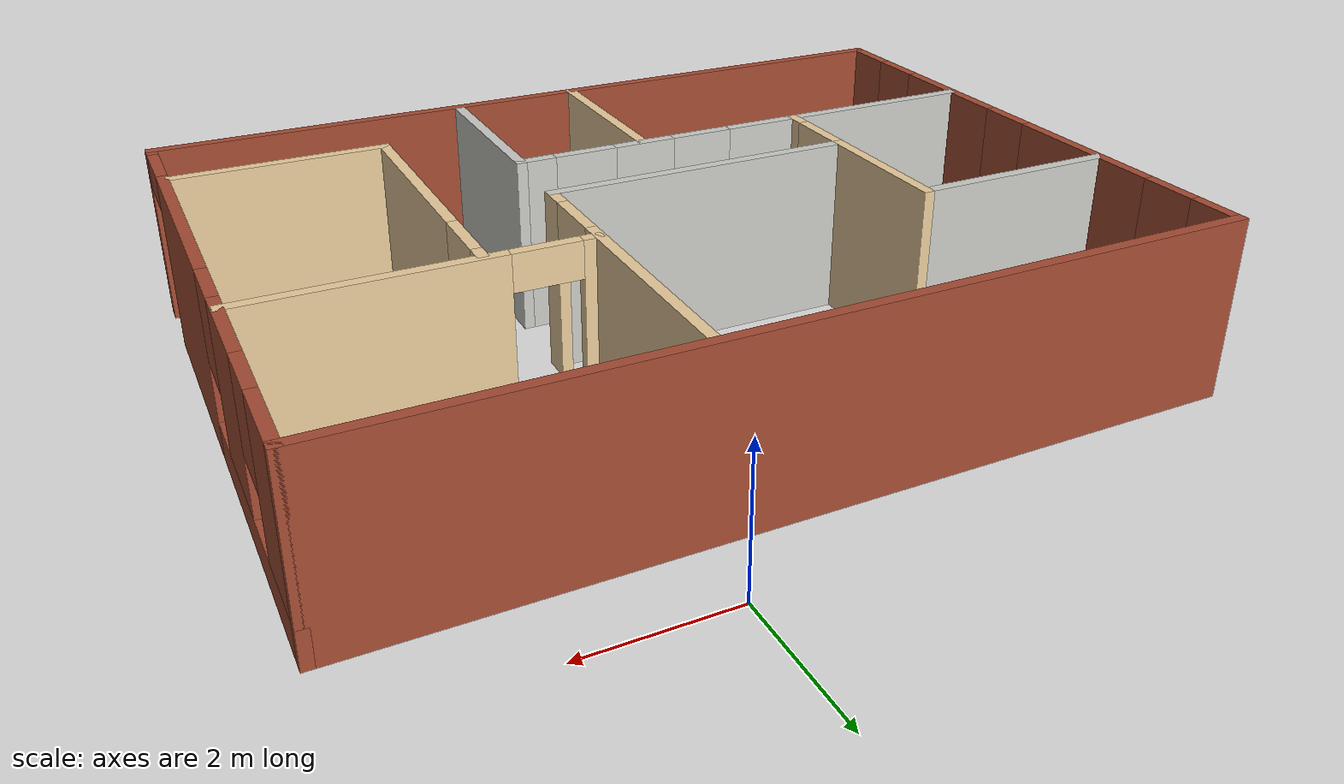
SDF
<?xml version='1.0'?>
<sdf version='1.6'>
  <model name='myplace'>
    <pose frame=''>-1.57011 -5.235 0 0 -0 0</pose>
    <link name='Wall_104'>
      <pose frame=''>3.62551 1.22565 0 0 -0 3.14159</pose>
      <visual name='Wall_104_Visual_0'>
        <pose frame=''>-0.587051 0 1.25 0 -0 0</pose>
        <geometry>
          <box>
            <size>3.3259 0.15 2.5</size>
          </box>
        </geometry>
        <material>
          <script>
            <uri>file://media/materials/scripts/gazebo.material</uri>
            <name>Gazebo/Grey</name>
          </script>
          <ambient>0.921569 0.807843 0.615686 1</ambient>
        </material>
        <meta>
          <layer>0</layer>
        </meta>
      </visual>
      <collision name='Wall_104_Collision_0'>
        <geometry>
          <box>
            <size>3.3259 0.15 2.5</size>
          </box>
        </geometry>
        <pose frame=''>-0.587051 0 1.25 0 -0 0</pose>
      </collision>
      <visual name='Wall_104_Visual_1'>
        <pose frame=''>2.11295 0 1.25 0 -0 0</pose>
        <geometry>
          <box>
            <size>0.274103 0.15 2.5</size>
          </box>
        </geometry>
        <material>
          <script>
            <uri>file://media/materials/scripts/gazebo.material</uri>
            <name>Gazebo/Grey</name>
          </script>
          <ambient>0.921569 0.807843 0.615686 1</ambient>
        </material>
        <meta>
          <layer>0</layer>
        </meta>
      </visual>
      <collision name='Wall_104_Collision_1'>
        <geometry>
          <box>
            <size>0.274103 0.15 2.5</size>
          </box>
        </geometry>
        <pose frame=''>2.11295 0 1.25 0 -0 0</pose>
      </collision>
      <visual name='Wall_104_Visual_2'>
        <pose frame=''>1.5259 0 2.25 0 -0 0</pose>
        <geometry>
          <box>
            <size>0.9 0.15 0.5</size>
          </box>
        </geometry>
        <material>
          <script>
            <uri>file://media/materials/scripts/gazebo.material</uri>
            <name>Gazebo/Grey</name>
          </script>
          <ambient>0.921569 0.807843 0.615686 1</ambient>
        </material>
        <meta>
          <layer>0</layer>
        </meta>
      </visual>
      <collision name='Wall_104_Collision_2'>
        <geometry>
          <box>
            <size>0.9 0.15 0.5</size>
          </box>
        </geometry>
        <pose frame=''>1.5259 0 2.25 0 -0 0</pose>
      </collision>
    </link>
    <link name='Wall_106'>
      <pose frame=''>2.86292 -0.893742 0 0 0 -1.5708</pose>
      <visual name='Wall_106_Visual_0'>
        <pose frame=''>-1.98867 0 1.25 0 -0 0</pose>
        <geometry>
          <box>
            <size>0.272657 0.15 2.5</size>
          </box>
        </geometry>
        <material>
          <script>
            <uri>file://media/materials/scripts/gazebo.material</uri>
            <name>Gazebo/Grey</name>
          </script>
          <ambient>0.921569 0.807843 0.615686 1</ambient>
        </material>
        <meta>
          <layer>0</layer>
        </meta>
      </visual>
      <collision name='Wall_106_Collision_0'>
        <geometry>
          <box>
            <size>0.272657 0.15 2.5</size>
          </box>
        </geometry>
        <pose frame=''>-1.98867 0 1.25 0 -0 0</pose>
      </collision>
      <visual name='Wall_106_Visual_1'>
        <pose frame=''>0.586329 0 1.25 0 -0 0</pose>
        <geometry>
          <box>
            <size>3.07734 0.15 2.5</size>
          </box>
        </geometry>
        <material>
          <script>
            <uri>file://media/materials/scripts/gazebo.material</uri>
            <name>Gazebo/Grey</name>
          </script>
          <ambient>0.921569 0.807843 0.615686 1</ambient>
        </material>
        <meta>
          <layer>0</layer>
        </meta>
      </visual>
      <collision name='Wall_106_Collision_1'>
        <geometry>
          <box>
            <size>3.07734 0.15 2.5</size>
          </box>
        </geometry>
        <pose frame=''>0.586329 0 1.25 0 -0 0</pose>
      </collision>
      <visual name='Wall_106_Visual_2'>
        <pose frame=''>-1.40234 0 2.25 0 -0 0</pose>
        <geometry>
          <box>
            <size>0.9 0.15 0.5</size>
          </box>
        </geometry>
        <material>
          <script>
            <uri>file://media/materials/scripts/gazebo.material</uri>
            <name>Gazebo/Grey</name>
          </script>
          <ambient>0.921569 0.807843 0.615686 1</ambient>
        </material>
        <meta>
          <layer>0</layer>
        </meta>
      </visual>
      <collision name='Wall_106_Collision_2'>
        <geometry>
          <box>
            <size>0.9 0.15 0.5</size>
          </box>
        </geometry>
        <pose frame=''>-1.40234 0 2.25 0 -0 0</pose>
      </collision>
    </link>
    <link name='Wall_114'>
      <collision name='Wall_114_Collision'>
        <geometry>
          <box>
            <size>3 0.15 2.5</size>
          </box>
        </geometry>
        <pose frame=''>0 0 1.25 0 -0 0</pose>
      </collision>
      <visual name='Wall_114_Visual'>
        <pose frame=''>0 0 1.25 0 -0 0</pose>
        <geometry>
          <box>
            <size>3 0.15 2.5</size>
          </box>
        </geometry>
        <material>
          <script>
            <uri>file://media/materials/scripts/gazebo.material</uri>
            <name>Gazebo/Grey</name>
          </script>
          <ambient>0.921569 0.807843 0.615686 1</ambient>
        </material>
        <meta>
          <layer>0</layer>
        </meta>
      </visual>
      <pose frame=''>4.28792 -2.94374 0 0 -0 0</pose>
    </link>
    <link name='Wall_47'>
      <pose frame=''>-2.18696 -1.52463 0 0 -0 3.14159</pose>
      <visual name='Wall_47_Visual_0'>
        <pose frame=''>-3.35943 0 1.25 0 -0 0</pose>
        <geometry>
          <box>
            <size>0.574323 0.15 2.5</size>
          </box>
        </geometry>
        <material>
          <script>
            <uri>file://media/materials/scripts/gazebo.material</uri>
            <name>Gazebo/CeilingTiled</name>
          </script>
          <ambient>0.921569 0.807843 0.615686 1</ambient>
        </material>
        <meta>
          <layer>0</layer>
        </meta>
      </visual>
      <collision name='Wall_47_Collision_0'>
        <geometry>
          <box>
            <size>0.574323 0.15 2.5</size>
          </box>
        </geometry>
        <pose frame=''>-3.35943 0 1.25 0 -0 0</pose>
      </collision>
      <visual name='Wall_47_Visual_1'>
        <pose frame=''>-1.72463 0 1.25 0 -0 0</pose>
        <geometry>
          <box>
            <size>0.89527 0.15 2.5</size>
          </box>
        </geometry>
        <material>
          <script>
            <uri>file://media/materials/scripts/gazebo.material</uri>
            <name>Gazebo/CeilingTiled</name>
          </script>
          <ambient>0.921569 0.807843 0.615686 1</ambient>
        </material>
        <meta>
          <layer>0</layer>
        </meta>
      </visual>
      <collision name='Wall_47_Collision_1'>
        <geometry>
          <box>
            <size>0.89527 0.15 2.5</size>
          </box>
        </geometry>
        <pose frame=''>-1.72463 0 1.25 0 -0 0</pose>
      </collision>
      <visual name='Wall_47_Visual_2'>
        <pose frame=''>1.6348 0 1.25 0 -0 0</pose>
        <geometry>
          <box>
            <size>4.02359 0.15 2.5</size>
          </box>
        </geometry>
        <material>
          <script>
            <uri>file://media/materials/scripts/gazebo.material</uri>
            <name>Gazebo/CeilingTiled</name>
          </script>
          <ambient>0.921569 0.807843 0.615686 1</ambient>
        </material>
        <meta>
          <layer>0</layer>
        </meta>
      </visual>
      <collision name='Wall_47_Collision_2'>
        <geometry>
          <box>
            <size>4.02359 0.15 2.5</size>
          </box>
        </geometry>
        <pose frame=''>1.6348 0 1.25 0 -0 0</pose>
      </collision>
      <visual name='Wall_47_Visual_3'>
        <pose frame=''>-2.62227 0 2.25 0 -0 0</pose>
        <geometry>
          <box>
            <size>0.9 0.15 0.5</size>
          </box>
        </geometry>
        <material>
          <script>
            <uri>file://media/materials/scripts/gazebo.material</uri>
            <name>Gazebo/CeilingTiled</name>
          </script>
          <ambient>0.921569 0.807843 0.615686 1</ambient>
        </material>
        <meta>
          <layer>0</layer>
        </meta>
      </visual>
      <collision name='Wall_47_Collision_3'>
        <geometry>
          <box>
            <size>0.9 0.15 0.5</size>
          </box>
        </geometry>
        <pose frame=''>-2.62227 0 2.25 0 -0 0</pose>
      </collision>
      <visual name='Wall_47_Visual_4'>
        <pose frame=''>-0.827 0 2.25 0 -0 0</pose>
        <geometry>
          <box>
            <size>0.9 0.15 0.5</size>
          </box>
        </geometry>
        <material>
          <script>
            <uri>file://media/materials/scripts/gazebo.material</uri>
            <name>Gazebo/CeilingTiled</name>
          </script>
          <ambient>0.921569 0.807843 0.615686 1</ambient>
        </material>
        <meta>
          <layer>0</layer>
        </meta>
      </visual>
      <collision name='Wall_47_Collision_4'>
        <geometry>
          <box>
            <size>0.9 0.15 0.5</size>
          </box>
        </geometry>
        <pose frame=''>-0.827 0 2.25 0 -0 0</pose>
      </collision>
    </link>
    <link name='Wall_49'>
      <pose frame=''>-5.82011 0 0 0 0 -1.5708</pose>
      <visual name='Wall_49_Visual_0'>
        <pose frame=''>-3.85497 0 1.25 0 -0 0</pose>
        <geometry>
          <box>
            <size>0.790055 0.15 2.5</size>
          </box>
        </geometry>
        <material>
          <script>
            <uri>file://media/materials/scripts/gazebo.material</uri>
            <name>Gazebo/Bricks</name>
          </script>
          <ambient>1 1 1 1</ambient>
        </material>
        <meta>
          <layer>0</layer>
        </meta>
      </visual>
      <collision name='Wall_49_Collision_0'>
        <geometry>
          <box>
            <size>0.790055 0.15 2.5</size>
          </box>
        </geometry>
        <pose frame=''>-3.85497 0 1.25 0 -0 0</pose>
      </collision>
      <visual name='Wall_49_Visual_1'>
        <pose frame=''>0.395028 0 0.25 0 -0 0</pose>
        <geometry>
          <box>
            <size>7.70995 0.15 0.5</size>
          </box>
        </geometry>
        <material>
          <script>
            <uri>file://media/materials/scripts/gazebo.material</uri>
            <name>Gazebo/Bricks</name>
          </script>
          <ambient>1 1 1 1</ambient>
        </material>
        <meta>
          <layer>0</layer>
        </meta>
      </visual>
      <collision name='Wall_49_Collision_1'>
        <geometry>
          <box>
            <size>7.70995 0.15 0.5</size>
          </box>
        </geometry>
        <pose frame=''>0.395028 0 0.25 0 -0 0</pose>
      </collision>
      <visual name='Wall_49_Visual_2'>
        <pose frame=''>-1.4408 0 1.5 0 -0 0</pose>
        <geometry>
          <box>
            <size>2.43829 0.15 2</size>
          </box>
        </geometry>
        <material>
          <script>
            <uri>file://media/materials/scripts/gazebo.material</uri>
            <name>Gazebo/Bricks</name>
          </script>
          <ambient>1 1 1 1</ambient>
        </material>
        <meta>
          <layer>0</layer>
        </meta>
      </visual>
      <collision name='Wall_49_Collision_2'>
        <geometry>
          <box>
            <size>2.43829 0.15 2</size>
          </box>
        </geometry>
        <pose frame=''>-1.4408 0 1.5 0 -0 0</pose>
      </collision>
      <visual name='Wall_49_Visual_3'>
        <pose frame=''>1.57623 0 1.5 0 -0 0</pose>
        <geometry>
          <box>
            <size>1.99579 0.15 2</size>
          </box>
        </geometry>
        <material>
          <script>
            <uri>file://media/materials/scripts/gazebo.material</uri>
            <name>Gazebo/Bricks</name>
          </script>
          <ambient>1 1 1 1</ambient>
        </material>
        <meta>
          <layer>0</layer>
        </meta>
      </visual>
      <collision name='Wall_49_Collision_3'>
        <geometry>
          <box>
            <size>1.99579 0.15 2</size>
          </box>
        </geometry>
        <pose frame=''>1.57623 0 1.5 0 -0 0</pose>
      </collision>
      <visual name='Wall_49_Visual_4'>
        <pose frame=''>3.81206 0 1.5 0 -0 0</pose>
        <geometry>
          <box>
            <size>0.875873 0.15 2</size>
          </box>
        </geometry>
        <material>
          <script>
            <uri>file://media/materials/scripts/gazebo.material</uri>
            <name>Gazebo/Bricks</name>
          </script>
          <ambient>1 1 1 1</ambient>
        </material>
        <meta>
          <layer>0</layer>
        </meta>
      </visual>
      <collision name='Wall_49_Collision_4'>
        <geometry>
          <box>
            <size>0.875873 0.15 2</size>
          </box>
        </geometry>
        <pose frame=''>3.81206 0 1.5 0 -0 0</pose>
      </collision>
      <visual name='Wall_49_Visual_5'>
        <pose frame=''>-3.05994 0 1.9 0 -0 0</pose>
        <geometry>
          <box>
            <size>0.8 0.15 1.2</size>
          </box>
        </geometry>
        <material>
          <script>
            <uri>file://media/materials/scripts/gazebo.material</uri>
            <name>Gazebo/Bricks</name>
          </script>
          <ambient>1 1 1 1</ambient>
        </material>
        <meta>
          <layer>0</layer>
        </meta>
      </visual>
      <collision name='Wall_49_Collision_5'>
        <geometry>
          <box>
            <size>0.8 0.15 1.2</size>
          </box>
        </geometry>
        <pose frame=''>-3.05994 0 1.9 0 -0 0</pose>
      </collision>
      <visual name='Wall_49_Visual_6'>
        <pose frame=''>0.17834 0 1.9 0 -0 0</pose>
        <geometry>
          <box>
            <size>0.8 0.15 1.2</size>
          </box>
        </geometry>
        <material>
          <script>
            <uri>file://media/materials/scripts/gazebo.material</uri>
            <name>Gazebo/Bricks</name>
          </script>
          <ambient>1 1 1 1</ambient>
        </material>
        <meta>
          <layer>0</layer>
        </meta>
      </visual>
      <collision name='Wall_49_Collision_6'>
        <geometry>
          <box>
            <size>0.8 0.15 1.2</size>
          </box>
        </geometry>
        <pose frame=''>0.17834 0 1.9 0 -0 0</pose>
      </collision>
      <visual name='Wall_49_Visual_7'>
        <pose frame=''>2.97413 0 1.9 0 -0 0</pose>
        <geometry>
          <box>
            <size>0.8 0.15 1.2</size>
          </box>
        </geometry>
        <material>
          <script>
            <uri>file://media/materials/scripts/gazebo.material</uri>
            <name>Gazebo/Bricks</name>
          </script>
          <ambient>1 1 1 1</ambient>
        </material>
        <meta>
          <layer>0</layer>
        </meta>
      </visual>
      <collision name='Wall_49_Collision_7'>
        <geometry>
          <box>
            <size>0.8 0.15 1.2</size>
          </box>
        </geometry>
        <pose frame=''>2.97413 0 1.9 0 -0 0</pose>
      </collision>
    </link>
    <link name='Wall_53'>
      <pose frame=''>5.82011 0 0 0 -0 1.5708</pose>
      <visual name='Wall_53_Visual_0'>
        <pose frame=''>-4.11865 0 1.25 0 -0 0</pose>
        <geometry>
          <box>
            <size>0.262693 0.15 2.5</size>
          </box>
        </geometry>
        <material>
          <script>
            <uri>file://media/materials/scripts/gazebo.material</uri>
            <name>Gazebo/Bricks</name>
          </script>
          <ambient>1 1 1 1</ambient>
        </material>
        <meta>
          <layer>0</layer>
        </meta>
      </visual>
      <collision name='Wall_53_Collision_0'>
        <geometry>
          <box>
            <size>0.262693 0.15 2.5</size>
          </box>
        </geometry>
        <pose frame=''>-4.11865 0 1.25 0 -0 0</pose>
      </collision>
      <visual name='Wall_53_Visual_1'>
        <pose frame=''>-1.48084 0 1.25 0 -0 0</pose>
        <geometry>
          <box>
            <size>3.21294 0.15 2.5</size>
          </box>
        </geometry>
        <material>
          <script>
            <uri>file://media/materials/scripts/gazebo.material</uri>
            <name>Gazebo/Bricks</name>
          </script>
          <ambient>1 1 1 1</ambient>
        </material>
        <meta>
          <layer>0</layer>
        </meta>
      </visual>
      <collision name='Wall_53_Collision_1'>
        <geometry>
          <box>
            <size>3.21294 0.15 2.5</size>
          </box>
        </geometry>
        <pose frame=''>-1.48084 0 1.25 0 -0 0</pose>
      </collision>
      <visual name='Wall_53_Visual_2'>
        <pose frame=''>2.18782 0 0.25 0 -0 0</pose>
        <geometry>
          <box>
            <size>4.12437 0.15 0.5</size>
          </box>
        </geometry>
        <material>
          <script>
            <uri>file://media/materials/scripts/gazebo.material</uri>
            <name>Gazebo/Bricks</name>
          </script>
          <ambient>1 1 1 1</ambient>
        </material>
        <meta>
          <layer>0</layer>
        </meta>
      </visual>
      <collision name='Wall_53_Collision_2'>
        <geometry>
          <box>
            <size>4.12437 0.15 0.5</size>
          </box>
        </geometry>
        <pose frame=''>2.18782 0 0.25 0 -0 0</pose>
      </collision>
      <visual name='Wall_53_Visual_3'>
        <pose frame=''>1.61177 0 1.5 0 -0 0</pose>
        <geometry>
          <box>
            <size>1.37227 0.15 2</size>
          </box>
        </geometry>
        <material>
          <script>
            <uri>file://media/materials/scripts/gazebo.material</uri>
            <name>Gazebo/Bricks</name>
          </script>
          <ambient>1 1 1 1</ambient>
        </material>
        <meta>
          <layer>0</layer>
        </meta>
      </visual>
      <collision name='Wall_53_Collision_3'>
        <geometry>
          <box>
            <size>1.37227 0.15 2</size>
          </box>
        </geometry>
        <pose frame=''>1.61177 0 1.5 0 -0 0</pose>
      </collision>
      <visual name='Wall_53_Visual_4'>
        <pose frame=''>3.67395 0 1.5 0 -0 0</pose>
        <geometry>
          <box>
            <size>1.1521 0.15 2</size>
          </box>
        </geometry>
        <material>
          <script>
            <uri>file://media/materials/scripts/gazebo.material</uri>
            <name>Gazebo/Bricks</name>
          </script>
          <ambient>1 1 1 1</ambient>
        </material>
        <meta>
          <layer>0</layer>
        </meta>
      </visual>
      <collision name='Wall_53_Collision_4'>
        <geometry>
          <box>
            <size>1.1521 0.15 2</size>
          </box>
        </geometry>
        <pose frame=''>3.67395 0 1.5 0 -0 0</pose>
      </collision>
      <visual name='Wall_53_Visual_5'>
        <pose frame=''>0.525634 0 1.9 0 -0 0</pose>
        <geometry>
          <box>
            <size>0.8 0.15 1.2</size>
          </box>
        </geometry>
        <material>
          <script>
            <uri>file://media/materials/scripts/gazebo.material</uri>
            <name>Gazebo/Bricks</name>
          </script>
          <ambient>1 1 1 1</ambient>
        </material>
        <meta>
          <layer>0</layer>
        </meta>
      </visual>
      <collision name='Wall_53_Collision_5'>
        <geometry>
          <box>
            <size>0.8 0.15 1.2</size>
          </box>
        </geometry>
        <pose frame=''>0.525634 0 1.9 0 -0 0</pose>
      </collision>
      <visual name='Wall_53_Visual_6'>
        <pose frame=''>2.6979 0 1.9 0 -0 0</pose>
        <geometry>
          <box>
            <size>0.8 0.15 1.2</size>
          </box>
        </geometry>
        <material>
          <script>
            <uri>file://media/materials/scripts/gazebo.material</uri>
            <name>Gazebo/Bricks</name>
          </script>
          <ambient>1 1 1 1</ambient>
        </material>
        <meta>
          <layer>0</layer>
        </meta>
      </visual>
      <collision name='Wall_53_Collision_6'>
        <geometry>
          <box>
            <size>0.8 0.15 1.2</size>
          </box>
        </geometry>
        <pose frame=''>2.6979 0 1.9 0 -0 0</pose>
      </collision>
      <visual name='Wall_53_Visual_7'>
        <pose frame=''>-3.53731 0 2.25 0 -0 0</pose>
        <geometry>
          <box>
            <size>0.9 0.15 0.5</size>
          </box>
        </geometry>
        <material>
          <script>
            <uri>file://media/materials/scripts/gazebo.material</uri>
            <name>Gazebo/Bricks</name>
          </script>
          <ambient>1 1 1 1</ambient>
        </material>
        <meta>
          <layer>0</layer>
        </meta>
      </visual>
      <collision name='Wall_53_Collision_7'>
        <geometry>
          <box>
            <size>0.9 0.15 0.5</size>
          </box>
        </geometry>
        <pose frame=''>-3.53731 0 2.25 0 -0 0</pose>
      </collision>
    </link>
    <link name='Wall_63'>
      <pose frame=''>-2.92989 0.111193 0 0 0 -1.5708</pose>
      <visual name='Wall_63_Visual_0'>
        <pose frame=''>-0.619935 0 1.25 0 -0 0</pose>
        <geometry>
          <box>
            <size>2.18258 0.15 2.5</size>
          </box>
        </geometry>
        <material>
          <script>
            <uri>file://media/materials/scripts/gazebo.material</uri>
            <name>Gazebo/Grey</name>
          </script>
          <ambient>0.921569 0.807843 0.615686 1</ambient>
        </material>
        <meta>
          <layer>0</layer>
        </meta>
      </visual>
      <collision name='Wall_63_Collision_0'>
        <geometry>
          <box>
            <size>2.18258 0.15 2.5</size>
          </box>
        </geometry>
        <pose frame=''>-0.619935 0 1.25 0 -0 0</pose>
      </collision>
      <visual name='Wall_63_Visual_1'>
        <pose frame=''>1.54129 0 1.25 0 -0 0</pose>
        <geometry>
          <box>
            <size>0.33987 0.15 2.5</size>
          </box>
        </geometry>
        <material>
          <script>
            <uri>file://media/materials/scripts/gazebo.material</uri>
            <name>Gazebo/Grey</name>
          </script>
          <ambient>0.921569 0.807843 0.615686 1</ambient>
        </material>
        <meta>
          <layer>0</layer>
        </meta>
      </visual>
      <collision name='Wall_63_Collision_1'>
        <geometry>
          <box>
            <size>0.33987 0.15 2.5</size>
          </box>
        </geometry>
        <pose frame=''>1.54129 0 1.25 0 -0 0</pose>
      </collision>
      <visual name='Wall_63_Visual_2'>
        <pose frame=''>0.921354 0 2.25 0 -0 0</pose>
        <geometry>
          <box>
            <size>0.9 0.15 0.5</size>
          </box>
        </geometry>
        <material>
          <script>
            <uri>file://media/materials/scripts/gazebo.material</uri>
            <name>Gazebo/Grey</name>
          </script>
          <ambient>0.921569 0.807843 0.615686 1</ambient>
        </material>
        <meta>
          <layer>0</layer>
        </meta>
      </visual>
      <collision name='Wall_63_Collision_2'>
        <geometry>
          <box>
            <size>0.9 0.15 0.5</size>
          </box>
        </geometry>
        <pose frame=''>0.921354 0 2.25 0 -0 0</pose>
      </collision>
    </link>
    <link name='Wall_65'>
      <collision name='Wall_65_Collision'>
        <geometry>
          <box>
            <size>2.75 0.15 2.5</size>
          </box>
        </geometry>
        <pose frame=''>0 0 1.25 0 -0 0</pose>
      </collision>
      <visual name='Wall_65_Visual'>
        <pose frame=''>0 0 1.25 0 -0 0</pose>
        <geometry>
          <box>
            <size>2.75 0.15 2.5</size>
          </box>
        </geometry>
        <material>
          <script>
            <uri>file://media/materials/scripts/gazebo.material</uri>
            <name>Gazebo/CeilingTiled</name>
          </script>
          <ambient>0.921569 0.807843 0.615686 1</ambient>
        </material>
        <meta>
          <layer>0</layer>
        </meta>
      </visual>
      <pose frame=''>1.38463 -2.82463 0 0 0 -1.5708</pose>
    </link>
    <link name='Wall_68'>
      <collision name='Wall_68_Collision'>
        <geometry>
          <box>
            <size>2.75 0.15 2.5</size>
          </box>
        </geometry>
        <pose frame=''>0 0 1.25 0 -0 0</pose>
      </collision>
      <visual name='Wall_68_Visual'>
        <pose frame=''>0 0 1.25 0 -0 0</pose>
        <geometry>
          <box>
            <size>2.75 0.15 2.5</size>
          </box>
        </geometry>
        <material>
          <script>
            <uri>file://media/materials/scripts/gazebo.material</uri>
            <name>Gazebo/Grey</name>
          </script>
          <ambient>0.921569 0.807843 0.615686 1</ambient>
        </material>
        <meta>
          <layer>0</layer>
        </meta>
      </visual>
      <pose frame=''>-0.456438 -2.86618 0 0 0 -1.5708</pose>
    </link>
    <link name='Wall_71'>
      <collision name='Wall_71_Collision'>
        <geometry>
          <box>
            <size>4.5 0.15 2.5</size>
          </box>
        </geometry>
        <pose frame=''>0 0 1.25 0 -0 0</pose>
      </collision>
      <visual name='Wall_71_Visual'>
        <pose frame=''>0 0 1.25 0 -0 0</pose>
        <geometry>
          <box>
            <size>4.5 0.15 2.5</size>
          </box>
        </geometry>
        <material>
          <script>
            <uri>file://media/materials/scripts/gazebo.material</uri>
            <name>Gazebo/CeilingTiled</name>
          </script>
          <ambient>0.921569 0.807843 0.615686 1</ambient>
        </material>
        <meta>
          <layer>0</layer>
        </meta>
      </visual>
      <pose frame=''>-0.757802 -0.286519 0 0 -0 3.14159</pose>
    </link>
    <link name='Wall_78'>
      <collision name='Wall_78_Collision'>
        <geometry>
          <box>
            <size>3 0.15 2.5</size>
          </box>
        </geometry>
        <pose frame=''>0 0 1.25 0 -0 0</pose>
      </collision>
      <visual name='Wall_78_Visual'>
        <pose frame=''>0 0 1.25 0 -0 0</pose>
        <geometry>
          <box>
            <size>3 0.15 2.5</size>
          </box>
        </geometry>
        <material>
          <script>
            <uri>file://media/materials/scripts/gazebo.material</uri>
            <name>Gazebo/CeilingTiled</name>
          </script>
          <ambient>0.921569 0.807843 0.615686 1</ambient>
        </material>
        <meta>
          <layer>0</layer>
        </meta>
      </visual>
      <pose frame=''>-4.35489 1.74738 0 0 -0 3.14159</pose>
    </link>
    <link name='Wall_80'>
      <collision name='Wall_80_Collision'>
        <geometry>
          <box>
            <size>11.7902 0.15 2.5</size>
          </box>
        </geometry>
        <pose frame=''>0 0 1.25 0 -0 0</pose>
      </collision>
      <visual name='Wall_80_Visual'>
        <pose frame=''>0 0 1.25 0 -0 0</pose>
        <geometry>
          <box>
            <size>11.7902 0.15 2.5</size>
          </box>
        </geometry>
        <material>
          <script>
            <uri>file://media/materials/scripts/gazebo.material</uri>
            <name>Gazebo/Bricks</name>
          </script>
          <ambient>1 1 1 1</ambient>
        </material>
        <meta>
          <layer>0</layer>
        </meta>
      </visual>
      <pose frame=''>0 4.175 0 0 -0 0</pose>
    </link>
    <link name='Wall_82'>
      <collision name='Wall_82_Collision'>
        <geometry>
          <box>
            <size>11.7902 0.15 2.5</size>
          </box>
        </geometry>
        <pose frame=''>0 0 1.25 0 -0 0</pose>
      </collision>
      <visual name='Wall_82_Visual'>
        <pose frame=''>0 0 1.25 0 -0 0</pose>
        <geometry>
          <box>
            <size>11.7902 0.15 2.5</size>
          </box>
        </geometry>
        <material>
          <script>
            <uri>file://media/materials/scripts/gazebo.material</uri>
            <name>Gazebo/Bricks</name>
          </script>
          <ambient>1 1 1 1</ambient>
        </material>
        <meta>
          <layer>0</layer>
        </meta>
      </visual>
      <pose frame=''>0 -4.175 0 0 -0 0</pose>
    </link>
    <link name='Wall_89'>
      <pose frame=''>1.4172 1.88848 0 0 -0 1.5708</pose>
      <visual name='Wall_89_Visual_0'>
        <pose frame=''>-2.03994 0 1.25 0 -0 0</pose>
        <geometry>
          <box>
            <size>0.42012 0.15 2.5</size>
          </box>
        </geometry>
        <material>
          <script>
            <uri>file://media/materials/scripts/gazebo.material</uri>
            <name>Gazebo/Grey</name>
          </script>
          <ambient>0.921569 0.807843 0.615686 1</ambient>
        </material>
        <meta>
          <layer>0</layer>
        </meta>
      </visual>
      <collision name='Wall_89_Collision_0'>
        <geometry>
          <box>
            <size>0.42012 0.15 2.5</size>
          </box>
        </geometry>
        <pose frame=''>-2.03994 0 1.25 0 -0 0</pose>
      </collision>
      <visual name='Wall_89_Visual_1'>
        <pose frame=''>0.66006 0 1.25 0 -0 0</pose>
        <geometry>
          <box>
            <size>3.17988 0.15 2.5</size>
          </box>
        </geometry>
        <material>
          <script>
            <uri>file://media/materials/scripts/gazebo.material</uri>
            <name>Gazebo/Grey</name>
          </script>
          <ambient>0.921569 0.807843 0.615686 1</ambient>
        </material>
        <meta>
          <layer>0</layer>
        </meta>
      </visual>
      <collision name='Wall_89_Collision_1'>
        <geometry>
          <box>
            <size>3.17988 0.15 2.5</size>
          </box>
        </geometry>
        <pose frame=''>0.66006 0 1.25 0 -0 0</pose>
      </collision>
      <visual name='Wall_89_Visual_2'>
        <pose frame=''>-1.37988 0 2.25 0 -0 0</pose>
        <geometry>
          <box>
            <size>0.9 0.15 0.5</size>
          </box>
        </geometry>
        <material>
          <script>
            <uri>file://media/materials/scripts/gazebo.material</uri>
            <name>Gazebo/Grey</name>
          </script>
          <ambient>0.921569 0.807843 0.615686 1</ambient>
        </material>
        <meta>
          <layer>0</layer>
        </meta>
      </visual>
      <collision name='Wall_89_Collision_2'>
        <geometry>
          <box>
            <size>0.9 0.15 0.5</size>
          </box>
        </geometry>
        <pose frame=''>-1.37988 0 2.25 0 -0 0</pose>
      </collision>
    </link>
    <static>1</static>
  </model>
</sdf>
